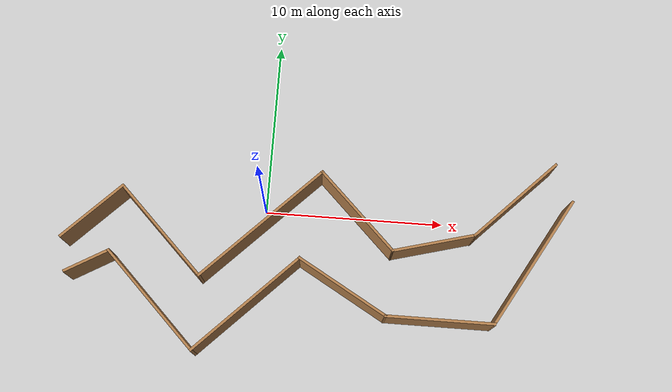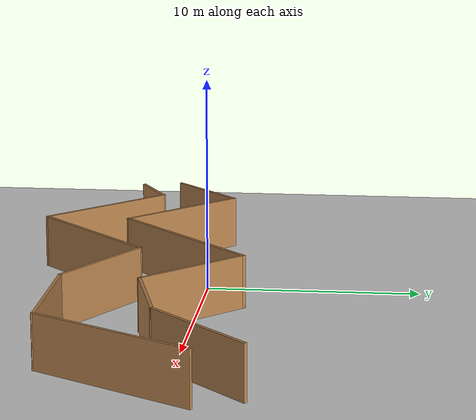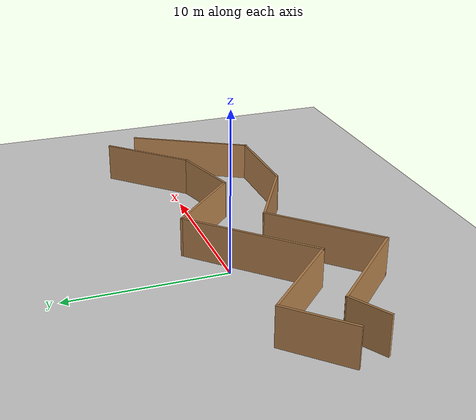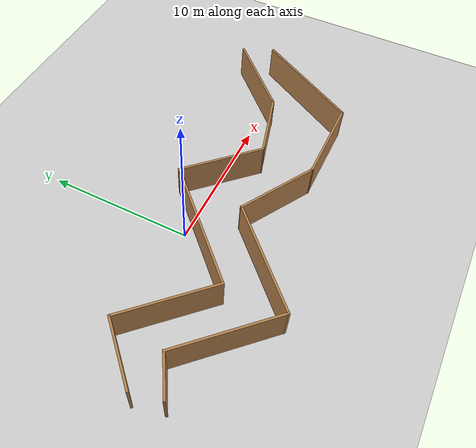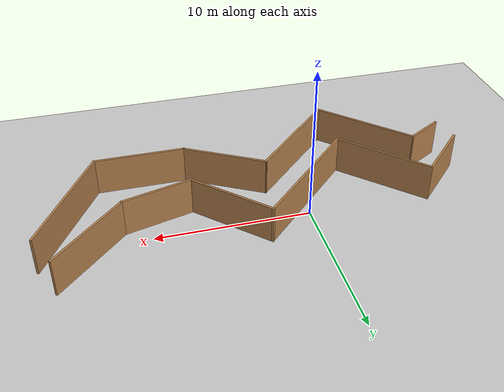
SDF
<sdf version="1.7">
 <world name="default">
  <light name="sun" type="directional">
   <pose>0 0 10 0 -0 0</pose>
   <diffuse>0.8 0.8 0.8 1</diffuse>
   <specular>0.2 0.2 0.2 1</specular>
   <attenuation>
    <range>1000</range>
    <constant>0.9</constant>
    <linear>0.01</linear>
    <quadratic>0.001</quadratic>
   </attenuation>
   <direction>-0.5 0.1 -0.9</direction>
   <spot><inner_angle>0</inner_angle><outer_angle>0</outer_angle><falloff>0</falloff></spot>
  </light>
  <model name="ground_plane">
   <static>1</static>
   <link name="link">
    <collision name="collision">
     <geometry><plane><normal>0 0 1</normal><size>100 100</size></plane></geometry>
     <surface>
      <contact><collide_bitmask>65535</collide_bitmask></contact>
      <friction><ode><mu>100</mu><mu2>50</mu2></ode></friction>
     </surface>
    </collision>
    <visual name="visual">
     <cast_shadows>0</cast_shadows>
     <geometry><plane><normal>0 0 1</normal><size>100 100</size></plane></geometry>
     <material>
      <script><uri>file://media/materials/scripts/gazebo.material</uri><name>Gazebo/Grey</name></script>
     </material>
    </visual>
   </link>
  </model>
  <gravity>0 0 -9.8</gravity>
  <magnetic_field>6e-06 2.3e-05 -4.2e-05</magnetic_field>
  <atmosphere type="adiabatic"/>
  <physics type="ode">
   <max_step_size>0.001</max_step_size>
   <real_time_factor>1</real_time_factor>
   <real_time_update_rate>1000</real_time_update_rate>
  </physics>
  <scene><ambient>0.4 0.4 0.4 1</ambient><background>0.7 0.7 0.7 1</background><shadows>1</shadows></scene>
  <spherical_coordinates>
   <surface_model>EARTH_WGS84</surface_model>
   <latitude_deg>0</latitude_deg>
   <longitude_deg>0</longitude_deg>
   <elevation>0</elevation>
   <heading_deg>0</heading_deg>
  </spherical_coordinates>
  <model name="street">
   <pose>2.94799 -2.46836 0 0 -0 0</pose>
   <link name="Wall_0">
    <collision name="Wall_0_Collision">
     <geometry><box><size>4.5 0.15 2.5</size></box></geometry>
     <pose>0 0 1.25 0 -0 0</pose>
    </collision>
    <visual name="Wall_0_Visual">
     <pose>0 0 1.25 0 -0 0</pose>
     <geometry><box><size>4.5 0.15 2.5</size></box></geometry>
     <material>
      <script><uri>file://media/materials/scripts/gazebo.material</uri><name>Gazebo/Wood</name></script>
      <ambient>1 1 1 1</ambient>
     </material>
     <meta><layer>0</layer></meta>
    </visual>
    <pose>-12.3895 1.32942 0 0 -0 0.785398</pose>
   </link>
   <link name="Wall_1">
    <collision name="Wall_1_Collision">
     <geometry><box><size>6.75 0.15 2.5</size></box></geometry>
     <pose>0 0 1.25 0 -0 0</pose>
    </collision>
    <visual name="Wall_1_Visual">
     <pose>0 0 1.25 0 -0 0</pose>
     <geometry><box><size>6.75 0.15 2.5</size></box></geometry>
     <material>
      <script><uri>file://media/materials/scripts/gazebo.material</uri><name>Gazebo/Wood</name></script>
      <ambient>1 1 1 1</ambient>
     </material>
     <meta><layer>0</layer></meta>
    </visual>
    <pose>-8.51807 0.533922 0 0 -0 -0.785398</pose>
   </link>
   <link name="Wall_10">
    <collision name="Wall_10_Collision">
     <geometry><box><size>5.75 0.15 2.5</size></box></geometry>
     <pose>0 0 1.25 0 -0 0</pose>
    </collision>
    <visual name="Wall_10_Visual">
     <pose>0 0 1.25 0 -0 0</pose>
     <geometry><box><size>5.75 0.15 2.5</size></box></geometry>
     <material>
      <script><uri>file://media/materials/scripts/gazebo.material</uri><name>Gazebo/Wood</name></script>
      <ambient>1 1 1 1</ambient>
     </material>
     <meta><layer>0</layer></meta>
    </visual>
    <pose>1.60618 -1.8517 0 0 -0 -0.523599</pose>
   </link>
   <link name="Wall_11">
    <collision name="Wall_11_Collision">
     <geometry><box><size>6 0.15 2.5</size></box></geometry>
     <pose>0 0 1.25 0 -0 0</pose>
    </collision>
    <visual name="Wall_11_Visual">
     <pose>0 0 1.25 0 -0 0</pose>
     <geometry><box><size>6 0.15 2.5</size></box></geometry>
     <material>
      <script><uri>file://media/materials/scripts/gazebo.material</uri><name>Gazebo/Wood</name></script>
      <ambient>1 1 1 1</ambient>
     </material>
     <meta><layer>0</layer></meta>
    </visual>
    <pose>6.95605 -3.2517 0 0 -0 0</pose>
   </link>
   <link name="Wall_12">
    <collision name="Wall_12_Collision">
     <geometry><box><size>8.25 0.15 2.5</size></box></geometry>
     <pose>0 0 1.25 0 -0 0</pose>
    </collision>
    <visual name="Wall_12_Visual">
     <pose>0 0 1.25 0 -0 0</pose>
     <geometry><box><size>8.25 0.15 2.5</size></box></geometry>
     <material>
      <script><uri>file://media/materials/scripts/gazebo.material</uri><name>Gazebo/Wood</name></script>
      <ambient>1 1 1 1</ambient>
     </material>
     <meta><layer>0</layer></meta>
    </visual>
    <pose>11.9061 0.255706 0 0 -0 1.0472</pose>
   </link>
   <link name="Wall_2">
    <collision name="Wall_2_Collision">
     <geometry><box><size>9 0.15 2.5</size></box></geometry>
     <pose>0 0 1.25 0 -0 0</pose>
    </collision>
    <visual name="Wall_2_Visual">
     <pose>0 0 1.25 0 -0 0</pose>
     <geometry><box><size>9 0.15 2.5</size></box></geometry>
     <material>
      <script><uri>file://media/materials/scripts/gazebo.material</uri><name>Gazebo/Wood</name></script>
      <ambient>1 1 1 1</ambient>
     </material>
     <meta><layer>0</layer></meta>
    </visual>
    <pose>-3.05567 1.32942 0 0 -0 0.785398</pose>
   </link>
   <link name="Wall_3">
    <collision name="Wall_3_Collision">
     <geometry><box><size>6 0.15 2.5</size></box></geometry>
     <pose>0 0 1.25 0 -0 0</pose>
    </collision>
    <visual name="Wall_3_Visual">
     <pose>0 0 1.25 0 -0 0</pose>
     <geometry><box><size>6 0.15 2.5</size></box></geometry>
     <material>
      <script><uri>file://media/materials/scripts/gazebo.material</uri><name>Gazebo/Wood</name></script>
      <ambient>1 1 1 1</ambient>
     </material>
     <meta><layer>0</layer></meta>
    </visual>
    <pose>2.14156 2.39008 0 0 -0 -0.785398</pose>
   </link>
   <link name="Wall_4">
    <collision name="Wall_4_Collision">
     <geometry><box><size>4.75 0.15 2.5</size></box></geometry>
     <pose>0 0 1.25 0 -0 0</pose>
    </collision>
    <visual name="Wall_4_Visual">
     <pose>0 0 1.25 0 -0 0</pose>
     <geometry><box><size>4.75 0.15 2.5</size></box></geometry>
     <material>
      <script><uri>file://media/materials/scripts/gazebo.material</uri><name>Gazebo/Wood</name></script>
      <ambient>1 1 1 1</ambient>
     </material>
     <meta><layer>0</layer></meta>
    </visual>
    <pose>6.43148 0.917073 0 0 -0 0.261799</pose>
   </link>
   <link name="Wall_5">
    <collision name="Wall_5_Collision">
     <geometry><box><size>6.25 0.15 2.5</size></box></geometry>
     <pose>0 0 1.25 0 -0 0</pose>
    </collision>
    <visual name="Wall_5_Visual">
     <pose>0 0 1.25 0 -0 0</pose>
     <geometry><box><size>6.25 0.15 2.5</size></box></geometry>
     <material>
      <script><uri>file://media/materials/scripts/gazebo.material</uri><name>Gazebo/Wood</name></script>
      <ambient>1 1 1 1</ambient>
     </material>
     <meta><layer>0</layer></meta>
    </visual>
    <pose>10.8098 3.66903 0 0 -0 0.785398</pose>
   </link>
   <link name="Wall_7">
    <collision name="Wall_7_Collision">
     <geometry><box><size>2.75 0.15 2.5</size></box></geometry>
     <pose>0 0 1.25 0 -0 0</pose>
    </collision>
    <visual name="Wall_7_Visual">
     <pose>0 0 1.25 0 -0 0</pose>
     <geometry><box><size>2.75 0.15 2.5</size></box></geometry>
     <material>
      <script><uri>file://media/materials/scripts/gazebo.material</uri><name>Gazebo/Wood</name></script>
      <ambient>1 1 1 1</ambient>
     </material>
     <meta><layer>0</layer></meta>
    </visual>
    <pose>-12.339 -1.45525 0 0 -0 0.523599</pose>
   </link>
   <link name="Wall_8">
    <collision name="Wall_8_Collision">
     <geometry><box><size>7.25 0.15 2.5</size></box></geometry>
     <pose>0 0 1.25 0 -0 0</pose>
    </collision>
    <visual name="Wall_8_Visual">
     <pose>0 0 1.25 0 -0 0</pose>
     <geometry><box><size>7.25 0.15 2.5</size></box></geometry>
     <material>
      <script><uri>file://media/materials/scripts/gazebo.material</uri><name>Gazebo/Wood</name></script>
      <ambient>1 1 1 1</ambient>
     </material>
     <meta><layer>0</layer></meta>
    </visual>
    <pose>-8.70293 -3.31548 0 0 -0 -0.785398</pose>
   </link>
   <link name="Wall_9">
    <collision name="Wall_9_Collision">
     <geometry><box><size>7.75 0.15 2.5</size></box></geometry>
     <pose>0 0 1.25 0 -0 0</pose>
    </collision>
    <visual name="Wall_9_Visual">
     <pose>0 0 1.25 0 -0 0</pose>
     <geometry><box><size>7.75 0.15 2.5</size></box></geometry>
     <material>
      <script><uri>file://media/materials/scripts/gazebo.material</uri><name>Gazebo/Wood</name></script>
      <ambient>1 1 1 1</ambient>
     </material>
     <meta><layer>0</layer></meta>
    </visual>
    <pose>-3.5057 -3.1387 0 0 -0 0.785398</pose>
   </link>
   <static>1</static>
  </model>
  <light name="user_directional_light_0" type="directional">
   <pose>-10.842 -3.69243 1 0 -0 0</pose>
   <diffuse>0.5 0.5 0.5 1</diffuse>
   <specular>0.1 0.1 0.1 1</specular>
   <direction>0.1 0.1 -0.9</direction>
   <attenuation>
    <range>20</range>
    <constant>0.5</constant>
    <linear>0.01</linear>
    <quadratic>0.001</quadratic>
   </attenuation>
  </light>
  <light name="user_directional_light_1" type="directional">
   <pose>16.2136 1.99123 1 0 -0 0</pose>
   <diffuse>0.5 0.5 0.5 1</diffuse>
   <specular>0.1 0.1 0.1 1</specular>
   <direction>0.1 0.1 -0.9</direction>
   <attenuation>
    <range>20</range>
    <constant>0.5</constant>
    <linear>0.01</linear>
    <quadratic>0.001</quadratic>
   </attenuation>
  </light>
 </world>
</sdf>
